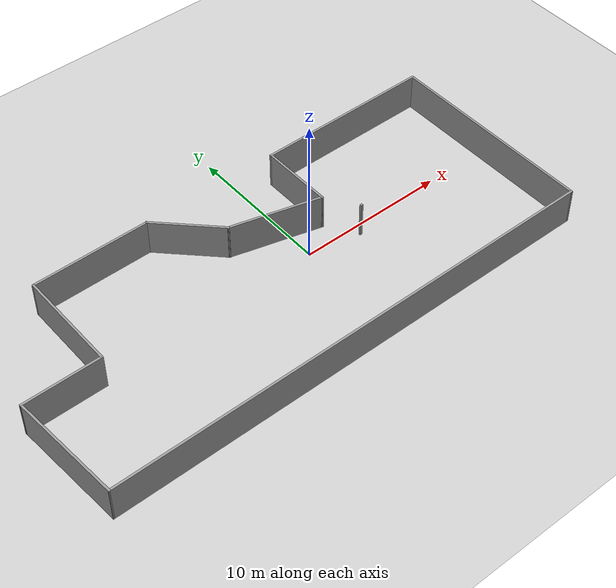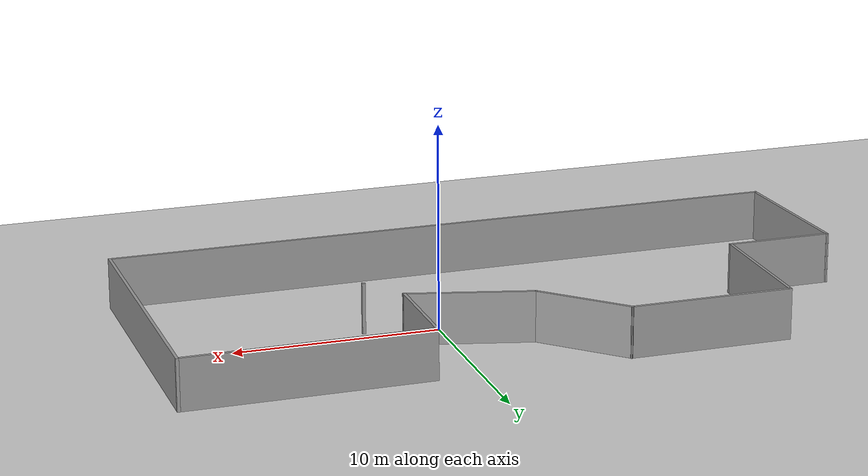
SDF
<sdf version="1.7">
 <world name="default">
  <light name="sun" type="directional">
   <pose>0 0 10 0 -0 0</pose>
   <diffuse>0.8 0.8 0.8 1</diffuse>
   <specular>0.2 0.2 0.2 1</specular>
   <attenuation>
    <range>1000</range>
    <constant>0.9</constant>
    <linear>0.01</linear>
    <quadratic>0.001</quadratic>
   </attenuation>
   <direction>-0.5 0.1 -0.9</direction>
   <spot><inner_angle>0</inner_angle><outer_angle>0</outer_angle><falloff>0</falloff></spot>
  </light>
  <model name="ground_plane">
   <static>1</static>
   <link name="link">
    <collision name="collision">
     <geometry><plane><normal>0 0 1</normal><size>100 100</size></plane></geometry>
     <surface>
      <contact><collide_bitmask>65535</collide_bitmask></contact>
      <friction><ode><mu>100</mu><mu2>50</mu2></ode></friction>
     </surface>
    </collision>
    <visual name="visual">
     <cast_shadows>0</cast_shadows>
     <geometry><plane><normal>0 0 1</normal><size>100 100</size></plane></geometry>
     <material>
      <script><uri>file://media/materials/scripts/gazebo.material</uri><name>Gazebo/Grey</name></script>
     </material>
    </visual>
   </link>
  </model>
  <gravity>0 0 -9.8</gravity>
  <magnetic_field>6e-06 2.3e-05 -4.2e-05</magnetic_field>
  <atmosphere type="adiabatic"/>
  <physics type="ode">
   <max_step_size>0.001</max_step_size>
   <real_time_factor>1</real_time_factor>
   <real_time_update_rate>1000</real_time_update_rate>
  </physics>
  <scene><ambient>0.4 0.4 0.4 1</ambient><background>0.7 0.7 0.7 1</background><shadows>1</shadows></scene>
  <audio><device>default</device></audio>
  <spherical_coordinates>
   <surface_model>EARTH_WGS84</surface_model>
   <latitude_deg>0</latitude_deg>
   <longitude_deg>0</longitude_deg>
   <elevation>0</elevation>
   <heading_deg>0</heading_deg>
  </spherical_coordinates>
  <model name="wall">
   <pose>-3.09568 -0.756525 0 0 -0 0</pose>
   <link name="Wall_1">
    <collision name="Wall_1_Collision">
     <geometry><box><size>0.16 0.15 2.5</size></box></geometry>
     <pose>0 0 1.25 0 -0 0</pose>
    </collision>
    <visual name="Wall_1_Visual">
     <pose>0 0 1.25 0 -0 0</pose>
     <geometry><box><size>0.16 0.15 2.5</size></box></geometry>
     <material>
      <script><uri>file://media/materials/scripts/gazebo.material</uri><name>Gazebo/Grey</name></script>
      <ambient>1 1 1 1</ambient>
     </material>
     <meta><layer>0</layer></meta>
    </visual>
    <pose>6.59068 0.092564 0 0 -0 0</pose>
   </link>
   <link name="Wall_10">
    <collision name="Wall_10_Collision">
     <geometry><box><size>6.25 0.15 2.5</size></box></geometry>
     <pose>0 0 1.25 0 -0 0</pose>
    </collision>
    <visual name="Wall_10_Visual">
     <pose>0 0 1.25 0 -0 0</pose>
     <geometry><box><size>6.25 0.15 2.5</size></box></geometry>
     <material>
      <script><uri>file://media/materials/scripts/gazebo.material</uri><name>Gazebo/Grey</name></script>
      <ambient>1 1 1 1</ambient>
     </material>
     <meta><layer>0</layer></meta>
    </visual>
    <pose>2.27223 2.89723 0 0 -0 2.87979</pose>
   </link>
   <link name="Wall_11">
    <collision name="Wall_11_Collision">
     <geometry><box><size>5 0.15 2.5</size></box></geometry>
     <pose>0 0 1.25 0 -0 0</pose>
    </collision>
    <visual name="Wall_11_Visual">
     <pose>0 0 1.25 0 -0 0</pose>
     <geometry><box><size>5 0.15 2.5</size></box></geometry>
     <material>
      <script><uri>file://media/materials/scripts/gazebo.material</uri><name>Gazebo/Grey</name></script>
      <ambient>1 1 1 1</ambient>
     </material>
     <meta><layer>0</layer></meta>
    </visual>
    <pose>-2.38858 5.40136 0 0 -0 2.35619</pose>
   </link>
   <link name="Wall_12">
    <collision name="Wall_12_Collision">
     <geometry><box><size>8 0.15 2.5</size></box></geometry>
     <pose>0 0 1.25 0 -0 0</pose>
    </collision>
    <visual name="Wall_12_Visual">
     <pose>0 0 1.25 0 -0 0</pose>
     <geometry><box><size>8 0.15 2.5</size></box></geometry>
     <material>
      <script><uri>file://media/materials/scripts/gazebo.material</uri><name>Gazebo/Grey</name></script>
      <ambient>1 1 1 1</ambient>
     </material>
     <meta><layer>0</layer></meta>
    </visual>
    <pose>-8.02831 7.11609 0 0 -0 3.14159</pose>
   </link>
   <link name="Wall_13">
    <collision name="Wall_13_Collision">
     <geometry><box><size>7 0.15 2.5</size></box></geometry>
     <pose>0 0 1.25 0 -0 0</pose>
    </collision>
    <visual name="Wall_13_Visual">
     <pose>0 0 1.25 0 -0 0</pose>
     <geometry><box><size>7 0.15 2.5</size></box></geometry>
     <material>
      <script><uri>file://media/materials/scripts/gazebo.material</uri><name>Gazebo/Grey</name></script>
      <ambient>1 1 1 1</ambient>
     </material>
     <meta><layer>0</layer></meta>
    </visual>
    <pose>-11.9533 3.69109 0 0 -0 -1.5708</pose>
   </link>
   <link name="Wall_14">
    <collision name="Wall_14_Collision">
     <geometry><box><size>5.25 0.15 2.5</size></box></geometry>
     <pose>0 0 1.25 0 -0 0</pose>
    </collision>
    <visual name="Wall_14_Visual">
     <pose>0 0 1.25 0 -0 0</pose>
     <geometry><box><size>5.25 0.15 2.5</size></box></geometry>
     <material>
      <script><uri>file://media/materials/scripts/gazebo.material</uri><name>Gazebo/Grey</name></script>
      <ambient>1 1 1 1</ambient>
     </material>
     <meta><layer>0</layer></meta>
    </visual>
    <pose>-14.5033 0.266093 0 0 -0 3.14159</pose>
   </link>
   <link name="Wall_15">
    <collision name="Wall_15_Collision">
     <geometry><box><size>7.57591 0.15 2.5</size></box></geometry>
     <pose>0 0 1.25 0 -0 0</pose>
    </collision>
    <visual name="Wall_15_Visual">
     <pose>0 0 1.25 0 -0 0</pose>
     <geometry><box><size>7.57591 0.15 2.5</size></box></geometry>
     <material>
      <script><uri>file://media/materials/scripts/gazebo.material</uri><name>Gazebo/Grey</name></script>
      <ambient>1 1 1 1</ambient>
     </material>
     <meta><layer>0</layer></meta>
    </visual>
    <pose>-16.7975 -3.43804 0 0 -0 -1.50185</pose>
   </link>
   <link name="Wall_5">
    <collision name="Wall_5_Collision">
     <geometry><box><size>33.75 0.15 2.5</size></box></geometry>
     <pose>0 0 1.25 0 -0 0</pose>
    </collision>
    <visual name="Wall_5_Visual">
     <pose>0 0 1.25 0 -0 0</pose>
     <geometry><box><size>33.75 0.15 2.5</size></box></geometry>
     <material>
      <script><uri>file://media/materials/scripts/gazebo.material</uri><name>Gazebo/Grey</name></script>
      <ambient>1 1 1 1</ambient>
     </material>
     <meta><layer>0</layer></meta>
    </visual>
    <pose>0.258302 -7.14217 0 0 -0 0</pose>
   </link>
   <link name="Wall_6">
    <collision name="Wall_6_Collision">
     <geometry><box><size>14.25 0.15 2.5</size></box></geometry>
     <pose>0 0 1.25 0 -0 0</pose>
    </collision>
    <visual name="Wall_6_Visual">
     <pose>0 0 1.25 0 -0 0</pose>
     <geometry><box><size>14.25 0.15 2.5</size></box></geometry>
     <material>
      <script><uri>file://media/materials/scripts/gazebo.material</uri><name>Gazebo/Grey</name></script>
      <ambient>1 1 1 1</ambient>
     </material>
     <meta><layer>0</layer></meta>
    </visual>
    <pose>17.0583 -0.092171 0 0 -0 1.5708</pose>
   </link>
   <link name="Wall_7">
    <collision name="Wall_7_Collision">
     <geometry><box><size>12 0.15 2.5</size></box></geometry>
     <pose>0 0 1.25 0 -0 0</pose>
    </collision>
    <visual name="Wall_7_Visual">
     <pose>0 0 1.25 0 -0 0</pose>
     <geometry><box><size>12 0.15 2.5</size></box></geometry>
     <material>
      <script><uri>file://media/materials/scripts/gazebo.material</uri><name>Gazebo/Grey</name></script>
      <ambient>1 1 1 1</ambient>
     </material>
     <meta><layer>0</layer></meta>
    </visual>
    <pose>11.1333 6.95783 0 0 -0 3.14159</pose>
   </link>
   <link name="Wall_8">
    <collision name="Wall_8_Collision">
     <geometry><box><size>5 0.15 2.5</size></box></geometry>
     <pose>0 0 1.25 0 -0 0</pose>
    </collision>
    <visual name="Wall_8_Visual">
     <pose>0 0 1.25 0 -0 0</pose>
     <geometry><box><size>5 0.15 2.5</size></box></geometry>
     <material>
      <script><uri>file://media/materials/scripts/gazebo.material</uri><name>Gazebo/Grey</name></script>
      <ambient>1 1 1 1</ambient>
     </material>
     <meta><layer>0</layer></meta>
    </visual>
    <pose>5.2083 4.53283 0 0 -0 -1.5708</pose>
   </link>
   <link name="Wall_9">
    <collision name="Wall_9_Collision">
     <geometry><box><size>0.16 0.15 2.5</size></box></geometry>
     <pose>0 0 1.25 0 -0 0</pose>
    </collision>
    <visual name="Wall_9_Visual">
     <pose>0 0 1.25 0 -0 0</pose>
     <geometry><box><size>0.16 0.15 2.5</size></box></geometry>
     <material>
      <script><uri>file://media/materials/scripts/gazebo.material</uri><name>Gazebo/Grey</name></script>
      <ambient>1 1 1 1</ambient>
     </material>
     <meta><layer>0</layer></meta>
    </visual>
    <pose>5.2133 2.10783 0 0 -0 0</pose>
   </link>
   <static>1</static>
  </model>
 </world>
</sdf>
